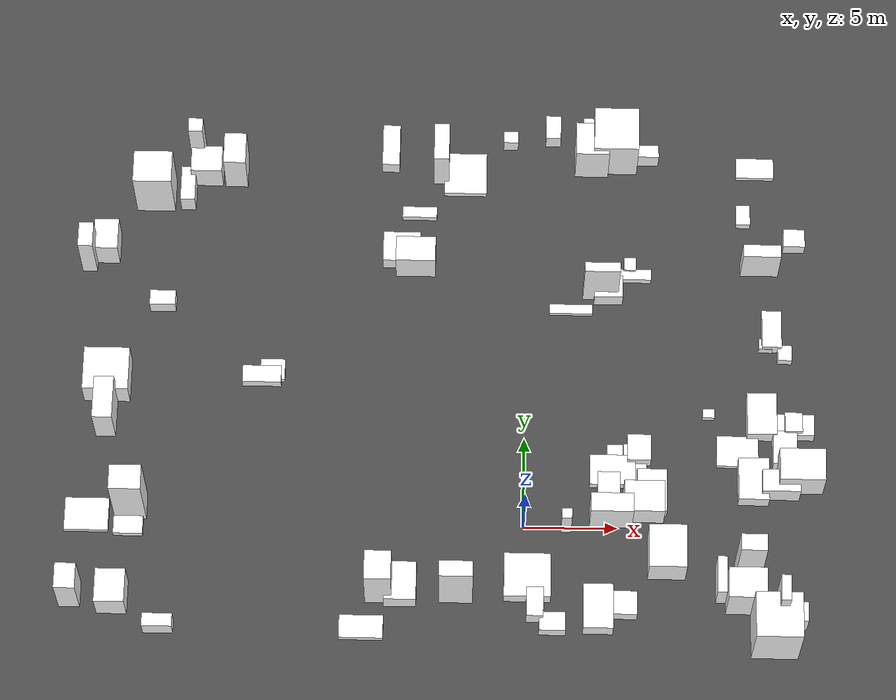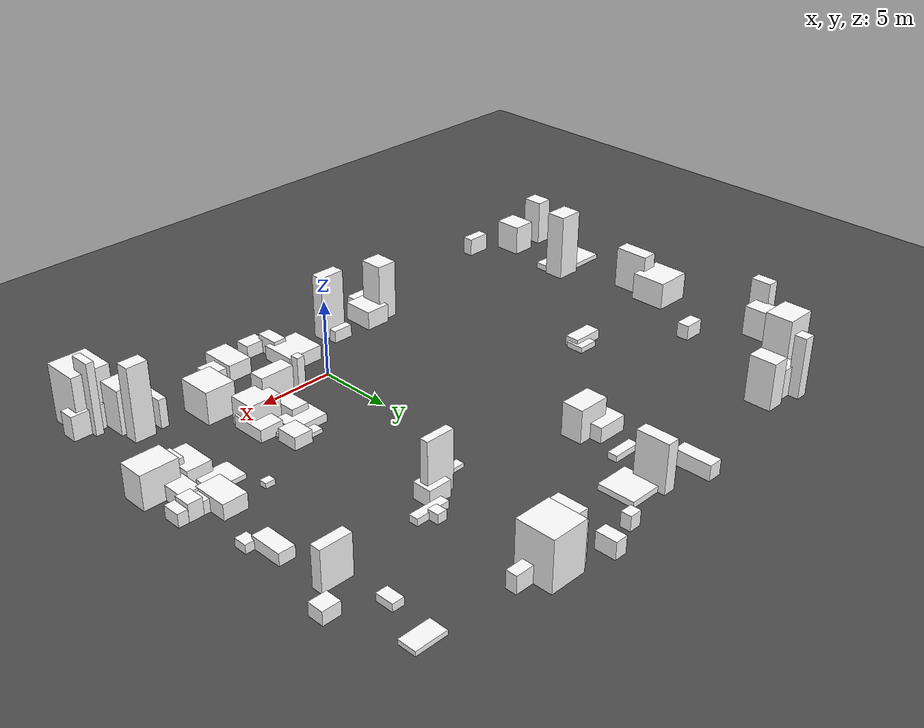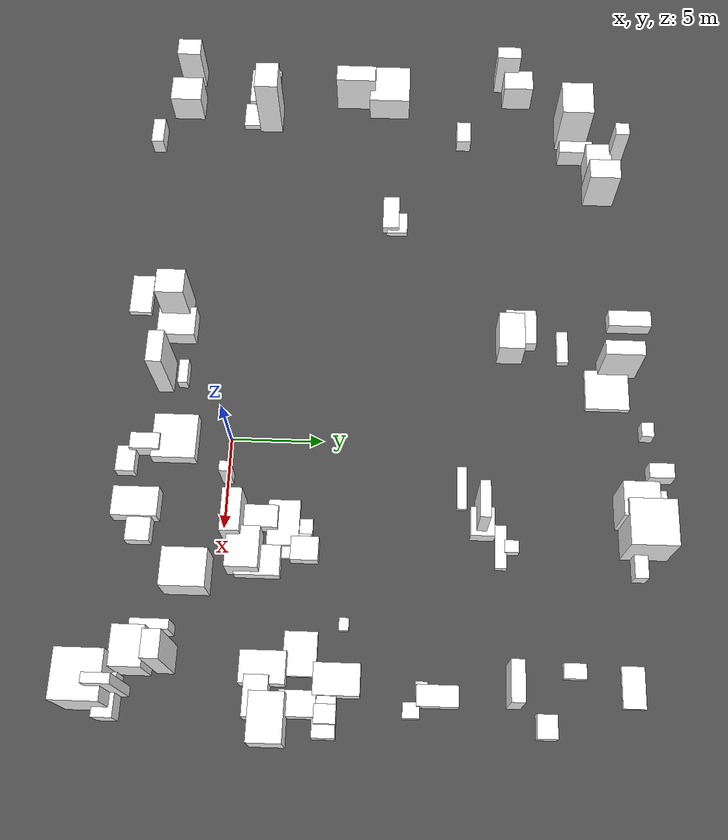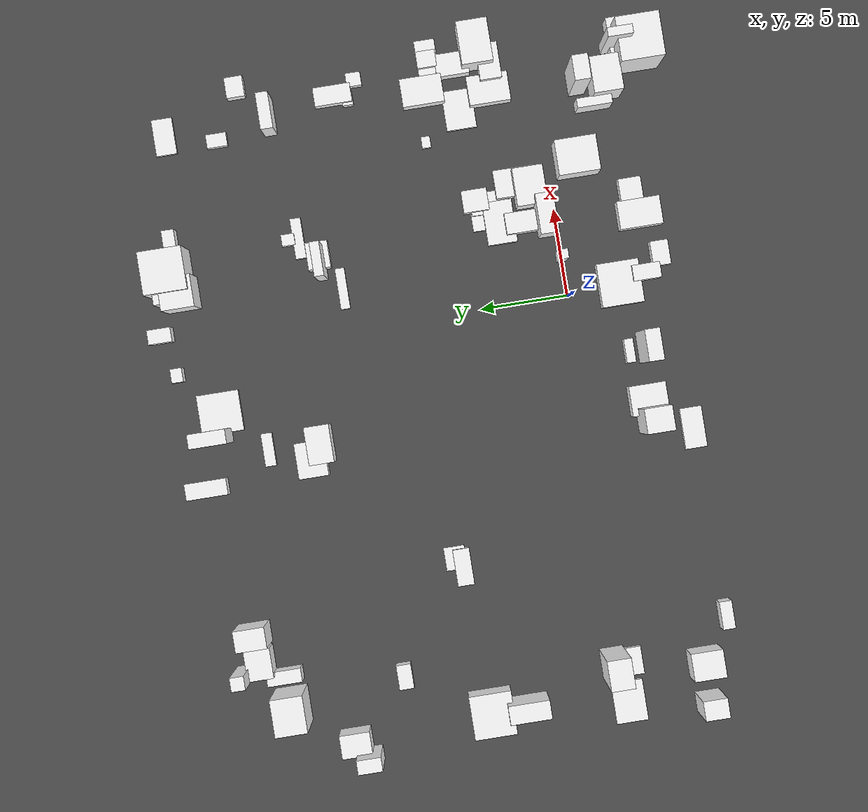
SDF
<sdf version="1.6">
 <world name="mirror_edge_world">
  <model name="ground_plane">
   <static>true</static>
   <link name="link">
    <collision name="collision">
     <geometry><plane><normal>0 0 1</normal><size>100 100</size></plane></geometry>
    </collision>
    <visual name="visual">
     <geometry><plane><normal>0 0 1</normal><size>100 100</size></plane></geometry>
     <material>
      <ambient>0.3 0.3 0.3 1</ambient>
      <diffuse>0.3 0.3 0.3 1</diffuse>
      <specular>0.5 0.5 0.5 1</specular>
      <emissive>0 0 0 1</emissive>
     </material>
    </visual>
   </link>
  </model>
  <model name="block_13_18">
   <static>true</static>
   <link name="link">
    <pose>10.487129065805483 -3.057924497340639 0.9482249293463831 0 0 0</pose>
    <visual name="visual">
     <geometry><box><size>0.5272210038724012 1.9909553987450106 1.8964498586927663</size></box></geometry>
     <material>
      <ambient>1 1 1 1</ambient>
      <diffuse>1 1 1 1</diffuse>
      <specular>0.9 0.9 0.9 1</specular>
      <emissive>0.05 0.05 0.05 1</emissive>
     </material>
    </visual>
   </link>
  </model>
  <model name="block_13_22">
   <static>true</static>
   <link name="link">
    <pose>4.802886377432639 22.130166051637776 1.629273458973543 0 0 0</pose>
    <visual name="visual">
     <geometry><box><size>2.4265361013867563 2.464404111170375 3.258546917947086</size></box></geometry>
     <material>
      <ambient>1 1 1 1</ambient>
      <diffuse>1 1 1 1</diffuse>
      <specular>0.9 0.9 0.9 1</specular>
      <emissive>0.05 0.05 0.05 1</emissive>
     </material>
    </visual>
   </link>
  </model>
  <model name="block_13_25">
   <static>true</static>
   <link name="link">
    <pose>-3.5347261602961524 -3.8883678359652385 2.186226596602356 0 0 0</pose>
    <visual name="visual">
     <geometry><box><size>1.7814680519391284 0.8538851199706008 4.372453193204712</size></box></geometry>
     <material>
      <ambient>1 1 1 1</ambient>
      <diffuse>1 1 1 1</diffuse>
      <specular>0.9 0.9 0.9 1</specular>
      <emissive>0.05 0.05 0.05 1</emissive>
     </material>
    </visual>
   </link>
  </model>
  <model name="block_13_26">
   <static>true</static>
   <link name="link">
    <pose>13.347224263716718 11.418604378397465 0.3897700186176803 0 0 0</pose>
    <collision name="collision">
     <geometry><box><size>1.0596894457926846 2.128671230000208 0.7795400372353606</size></box></geometry>
    </collision>
    <visual name="visual">
     <geometry><box><size>1.0596894457926846 2.128671230000208 0.7795400372353606</size></box></geometry>
     <material>
      <ambient>1 1 1 1</ambient>
      <diffuse>1 1 1 1</diffuse>
      <specular>0.9 0.9 0.9 1</specular>
      <emissive>0.05 0.05 0.05 1</emissive>
     </material>
    </visual>
   </link>
  </model>
  <model name="block_13_27">
   <static>true</static>
   <link name="link">
    <pose>-3.4332618519597276 20.58624436864243 0.19409173965066356 0 0 0</pose>
    <collision name="collision">
     <geometry><box><size>2.316476942068282 2.4197820741229012 0.38818347930132713</size></box></geometry>
    </collision>
    <visual name="visual">
     <geometry><box><size>2.316476942068282 2.4197820741229012 0.38818347930132713</size></box></geometry>
     <material>
      <ambient>1 1 1 1</ambient>
      <diffuse>1 1 1 1</diffuse>
      <specular>0.9 0.9 0.9 1</specular>
      <emissive>0.05 0.05 0.05 1</emissive>
     </material>
    </visual>
   </link>
  </model>
  <model name="block_13_37">
   <static>true</static>
   <link name="link">
    <pose>12.741703810310938 6.377152138402239 0.5125765211415966 0 0 0</pose>
    <collision name="collision">
     <geometry><box><size>1.5964678312690368 2.3696966784389373 1.0251530422831931</size></box></geometry>
    </collision>
    <visual name="visual">
     <geometry><box><size>1.5964678312690368 2.3696966784389373 1.0251530422831931</size></box></geometry>
     <material>
      <ambient>1 1 1 1</ambient>
      <diffuse>1 1 1 1</diffuse>
      <specular>0.9 0.9 0.9 1</specular>
      <emissive>0.05 0.05 0.05 1</emissive>
     </material>
    </visual>
   </link>
  </model>
  <model name="block_13_38">
   <static>true</static>
   <link name="link">
    <pose>-0.9614083044577626 22.597788607933662 0.48104453277165005 0 0 0</pose>
    <collision name="collision">
     <geometry><box><size>0.8028449219992302 0.6664906877554768 0.9620890655433001</size></box></geometry>
    </collision>
    <visual name="visual">
     <geometry><box><size>0.8028449219992302 0.6664906877554768 0.9620890655433001</size></box></geometry>
     <material>
      <ambient>1 1 1 1</ambient>
      <diffuse>1 1 1 1</diffuse>
      <specular>0.9 0.9 0.9 1</specular>
      <emissive>0.05 0.05 0.05 1</emissive>
     </material>
    </visual>
   </link>
  </model>
  <model name="block_13_39">
   <static>true</static>
   <link name="link">
    <pose>4.477514333618405 13.64779409189143 0.5415826231895932 0 0 0</pose>
    <collision name="collision">
     <geometry><box><size>1.5432336134487539 1.270050566878784 1.0831652463791863</size></box></geometry>
    </collision>
    <visual name="visual">
     <geometry><box><size>1.5432336134487539 1.270050566878784 1.0831652463791863</size></box></geometry>
     <material>
      <ambient>1 1 1 1</ambient>
      <diffuse>1 1 1 1</diffuse>
      <specular>0.9 0.9 0.9 1</specular>
      <emissive>0.05 0.05 0.05 1</emissive>
     </material>
    </visual>
   </link>
  </model>
  <model name="block_13_42">
   <static>true</static>
   <link name="link">
    <pose>-6.074371771575954 15.19791912146864 1.0917284993364396 0 0 0</pose>
    <visual name="visual">
     <geometry><box><size>2.1508211346242634 1.4194720122193467 2.183456998672879</size></box></geometry>
     <material>
      <ambient>1 1 1 1</ambient>
      <diffuse>1 1 1 1</diffuse>
      <specular>0.9 0.9 0.9 1</specular>
      <emissive>0.05 0.05 0.05 1</emissive>
     </material>
    </visual>
   </link>
  </model>
  <model name="block_13_44">
   <static>true</static>
   <link name="link">
    <pose>14.639185523052419 16.82144382006406 0.4281751161016098 0 0 0</pose>
    <collision name="collision">
     <geometry><box><size>1.1710046909045824 1.0304812800691767 0.8563502322032196</size></box></geometry>
    </collision>
    <visual name="visual">
     <geometry><box><size>1.1710046909045824 1.0304812800691767 0.8563502322032196</size></box></geometry>
     <material>
      <ambient>1 1 1 1</ambient>
      <diffuse>1 1 1 1</diffuse>
      <specular>0.9 0.9 0.9 1</specular>
      <emissive>0.05 0.05 0.05 1</emissive>
     </material>
    </visual>
   </link>
  </model>
  <model name="block_13_45">
   <static>true</static>
   <link name="link">
    <pose>5.515202533118227 3.61241212877552 0.13018730298122577 0 0 0</pose>
    <collision name="collision">
     <geometry><box><size>2.140902086587973 2.2291208324836917 0.26037460596245154</size></box></geometry>
    </collision>
    <visual name="visual">
     <geometry><box><size>2.140902086587973 2.2291208324836917 0.26037460596245154</size></box></geometry>
     <material>
      <ambient>1 1 1 1</ambient>
      <diffuse>1 1 1 1</diffuse>
      <specular>0.9 0.9 0.9 1</specular>
      <emissive>0.05 0.05 0.05 1</emissive>
     </material>
    </visual>
   </link>
  </model>
  <model name="block_13_46">
   <static>true</static>
   <link name="link">
    <pose>11.748171362711801 -3.8348486149523793 1.4670776445069063 0 0 0</pose>
    <visual name="visual">
     <geometry><box><size>2.0321841206257627 1.6551600098957349 2.9341552890138125</size></box></geometry>
     <material>
      <ambient>1 1 1 1</ambient>
      <diffuse>1 1 1 1</diffuse>
      <specular>0.9 0.9 0.9 1</specular>
      <emissive>0.05 0.05 0.05 1</emissive>
     </material>
    </visual>
   </link>
  </model>
  <model name="block_13_48">
   <static>true</static>
   <link name="link">
    <pose>-19.859103996359863 19.414748919960584 1.8324639464357986 0 0 0</pose>
    <visual name="visual">
     <geometry><box><size>0.8306620607632611 0.7622492284397788 3.664927892871597</size></box></geometry>
     <material>
      <ambient>1 1 1 1</ambient>
      <diffuse>1 1 1 1</diffuse>
      <specular>0.9 0.9 0.9 1</specular>
      <emissive>0.05 0.05 0.05 1</emissive>
     </material>
    </visual>
   </link>
  </model>
  <model name="block_13_50">
   <static>true</static>
   <link name="link">
    <pose>14.448396424150147 5.825688850412873 0.42594148405917454 0 0 0</pose>
    <collision name="collision">
     <geometry><box><size>2.212001617706015 1.1648211164075177 0.8518829681183491</size></box></geometry>
    </collision>
    <visual name="visual">
     <geometry><box><size>2.212001617706015 1.1648211164075177 0.8518829681183491</size></box></geometry>
     <material>
      <ambient>1 1 1 1</ambient>
      <diffuse>1 1 1 1</diffuse>
      <specular>0.9 0.9 0.9 1</specular>
      <emissive>0.05 0.05 0.05 1</emissive>
     </material>
    </visual>
   </link>
  </model>
  <model name="block_13_51">
   <static>true</static>
   <link name="link">
    <pose>9.90750855569933 6.59223469434511 0.17332525953890004 0 0 0</pose>
    <collision name="collision">
     <geometry><box><size>0.6482395583204206 0.5113994349599567 0.3466505190778001</size></box></geometry>
    </collision>
    <visual name="visual">
     <geometry><box><size>0.6482395583204206 0.5113994349599567 0.3466505190778001</size></box></geometry>
     <material>
      <ambient>1 1 1 1</ambient>
      <diffuse>1 1 1 1</diffuse>
      <specular>0.9 0.9 0.9 1</specular>
      <emissive>0.05 0.05 0.05 1</emissive>
     </material>
    </visual>
   </link>
  </model>
  <model name="block_13_52">
   <static>true</static>
   <link name="link">
    <pose>5.642928605898351 15.19931181954523 0.3164790339575603 0 0 0</pose>
    <collision name="collision">
     <geometry><box><size>0.652289572129717 0.7470863645880503 0.6329580679151205</size></box></geometry>
    </collision>
    <visual name="visual">
     <geometry><box><size>0.652289572129717 0.7470863645880503 0.6329580679151205</size></box></geometry>
     <material>
      <ambient>1 1 1 1</ambient>
      <diffuse>1 1 1 1</diffuse>
      <specular>0.9 0.9 0.9 1</specular>
      <emissive>0.05 0.05 0.05 1</emissive>
     </material>
    </visual>
   </link>
  </model>
  <model name="block_13_53">
   <static>true</static>
   <link name="link">
    <pose>-23.94707372075017 15.137665636836907 1.7051332428519175 0 0 0</pose>
    <visual name="visual">
     <geometry><box><size>0.7990171092513736 1.3815118097248413 3.410266485703835</size></box></geometry>
     <material>
      <ambient>1 1 1 1</ambient>
      <diffuse>1 1 1 1</diffuse>
      <specular>0.9 0.9 0.9 1</specular>
      <emissive>0.05 0.05 0.05 1</emissive>
     </material>
    </visual>
   </link>
  </model>
  <model name="block_13_59">
   <static>true</static>
   <link name="link">
    <pose>-20.97364919639511 0.7572670615895642 2.2802976197385956 0 0 0</pose>
    <visual name="visual">
     <geometry><box><size>1.691457847793279 1.3415627131068104 4.560595239477191</size></box></geometry>
     <material>
      <ambient>1 1 1 1</ambient>
      <diffuse>1 1 1 1</diffuse>
      <specular>0.9 0.9 0.9 1</specular>
      <emissive>0.05 0.05 0.05 1</emissive>
     </material>
    </visual>
   </link>
  </model>
  <model name="block_13_60">
   <static>true</static>
   <link name="link">
    <pose>-22.99265740549938 15.814046714301064 1.020261587283405 0 0 0</pose>
    <visual name="visual">
     <geometry><box><size>1.3216520874677777 1.7258064625416691 2.04052317456681</size></box></geometry>
     <material>
      <ambient>1 1 1 1</ambient>
      <diffuse>1 1 1 1</diffuse>
      <specular>0.9 0.9 0.9 1</specular>
      <emissive>0.05 0.05 0.05 1</emissive>
     </material>
    </visual>
   </link>
  </model>
  <model name="block_13_62">
   <static>true</static>
   <link name="link">
    <pose>0.014667282758086486 -2.4076154843114193 0.2721834176171426 0 0 0</pose>
    <collision name="collision">
     <geometry><box><size>0.86463001206432 0.8859106995395463 0.5443668352342852</size></box></geometry>
    </collision>
    <visual name="visual">
     <geometry><box><size>0.86463001206432 0.8859106995395463 0.5443668352342852</size></box></geometry>
     <material>
      <ambient>1 1 1 1</ambient>
      <diffuse>1 1 1 1</diffuse>
      <specular>0.9 0.9 0.9 1</specular>
      <emissive>0.05 0.05 0.05 1</emissive>
     </material>
    </visual>
   </link>
  </model>
  <model name="block_13_66">
   <static>true</static>
   <link name="link">
    <pose>6.127900345869236 1.1778050931836468 0.595203525630843 0 0 0</pose>
    <visual name="visual">
     <geometry><box><size>0.7275735965186017 0.8914207131132419 1.190407051261686</size></box></geometry>
     <material>
      <ambient>1 1 1 1</ambient>
      <diffuse>1 1 1 1</diffuse>
      <specular>0.9 0.9 0.9 1</specular>
      <emissive>0.05 0.05 0.05 1</emissive>
     </material>
    </visual>
   </link>
  </model>
  <model name="block_14_2">
   <static>true</static>
   <link name="link">
    <pose>13.962765803260133 4.480527503155499 0.5011640337249881 0 0 0</pose>
    <collision name="collision">
     <geometry><box><size>1.278043719399678 1.8699116963610358 1.0023280674499762</size></box></geometry>
    </collision>
    <visual name="visual">
     <geometry><box><size>1.278043719399678 1.8699116963610358 1.0023280674499762</size></box></geometry>
     <material>
      <ambient>1 1 1 1</ambient>
      <diffuse>1 1 1 1</diffuse>
      <specular>0.9 0.9 0.9 1</specular>
      <emissive>0.05 0.05 0.05 1</emissive>
     </material>
    </visual>
   </link>
  </model>
  <model name="block_14_3">
   <static>true</static>
   <link name="link">
    <pose>6.835737008848067 1.9705262496137026 0.41566323289990514 0 0 0</pose>
    <collision name="collision">
     <geometry><box><size>1.6015353167421578 2.37555659850039 0.8313264657998103</size></box></geometry>
    </collision>
    <visual name="visual">
     <geometry><box><size>1.6015353167421578 2.37555659850039 0.8313264657998103</size></box></geometry>
     <material>
      <ambient>1 1 1 1</ambient>
      <diffuse>1 1 1 1</diffuse>
      <specular>0.9 0.9 0.9 1</specular>
      <emissive>0.05 0.05 0.05 1</emissive>
     </material>
    </visual>
   </link>
  </model>
  <model name="block_14_4">
   <static>true</static>
   <link name="link">
    <pose>14.057643732520923 10.109156398002153 0.28021665737836315 0 0 0</pose>
    <collision name="collision">
     <geometry><box><size>0.774184454504864 0.858885879928599 0.5604333147567263</size></box></geometry>
    </collision>
    <visual name="visual">
     <geometry><box><size>0.774184454504864 0.858885879928599 0.5604333147567263</size></box></geometry>
     <material>
      <ambient>1 1 1 1</ambient>
      <diffuse>1 1 1 1</diffuse>
      <specular>0.9 0.9 0.9 1</specular>
      <emissive>0.05 0.05 0.05 1</emissive>
     </material>
    </visual>
   </link>
  </model>
  <model name="block_14_12">
   <static>true</static>
   <link name="link">
    <pose>11.456769672830156 4.448508865527255 0.15262072766027945 0 0 0</pose>
    <collision name="collision">
     <geometry><box><size>2.247187102049118 1.7159689928351636 0.3052414553205589</size></box></geometry>
    </collision>
    <visual name="visual">
     <geometry><box><size>2.247187102049118 1.7159689928351636 0.3052414553205589</size></box></geometry>
     <material>
      <ambient>1 1 1 1</ambient>
      <diffuse>1 1 1 1</diffuse>
      <specular>0.9 0.9 0.9 1</specular>
      <emissive>0.05 0.05 0.05 1</emissive>
     </material>
    </visual>
   </link>
  </model>
  <model name="block_14_13">
   <static>true</static>
   <link name="link">
    <pose>-22.558237402896797 5.925179399697304 1.4251321566281157 0 0 0</pose>
    <visual name="visual">
     <geometry><box><size>1.0646524672377267 2.344278083755642 2.8502643132562313</size></box></geometry>
     <material>
      <ambient>1 1 1 1</ambient>
      <diffuse>1 1 1 1</diffuse>
      <specular>0.9 0.9 0.9 1</specular>
      <emissive>0.05 0.05 0.05 1</emissive>
     </material>
    </visual>
   </link>
  </model>
  <model name="block_14_14">
   <static>true</static>
   <link name="link">
    <pose>4.046683612412554 13.581538816527043 1.9049634741556685 0 0 0</pose>
    <visual name="visual">
     <geometry><box><size>1.9162616528552945 0.5409567863028868 3.809926948311337</size></box></geometry>
     <material>
      <ambient>1 1 1 1</ambient>
      <diffuse>1 1 1 1</diffuse>
      <specular>0.9 0.9 0.9 1</specular>
      <emissive>0.05 0.05 0.05 1</emissive>
     </material>
    </visual>
   </link>
  </model>
  <model name="block_14_15">
   <static>true</static>
   <link name="link">
    <pose>1.3885294801698507 23.189698170276436 0.5573639202047234 0 0 0</pose>
    <collision name="collision">
     <geometry><box><size>0.8235660976095254 1.350610979631631 1.1147278404094467</size></box></geometry>
    </collision>
    <visual name="visual">
     <geometry><box><size>0.8235660976095254 1.350610979631631 1.1147278404094467</size></box></geometry>
     <material>
      <ambient>1 1 1 1</ambient>
      <diffuse>1 1 1 1</diffuse>
      <specular>0.9 0.9 0.9 1</specular>
      <emissive>0.05 0.05 0.05 1</emissive>
     </material>
    </visual>
   </link>
  </model>
  <model name="block_14_18">
   <static>true</static>
   <link name="link">
    <pose>4.7388472906389545 3.179769156637568 0.27114532767709126 0 0 0</pose>
    <collision name="collision">
     <geometry><box><size>2.4482341095503792 1.688832008954729 0.5422906553541825</size></box></geometry>
    </collision>
    <visual name="visual">
     <geometry><box><size>2.4482341095503792 1.688832008954729 0.5422906553541825</size></box></geometry>
     <material>
      <ambient>1 1 1 1</ambient>
      <diffuse>1 1 1 1</diffuse>
      <specular>0.9 0.9 0.9 1</specular>
      <emissive>0.05 0.05 0.05 1</emissive>
     </material>
    </visual>
   </link>
  </model>
  <model name="block_14_23">
   <static>true</static>
   <link name="link">
    <pose>-18.708186702249378 19.2509986830788 0.6910282966061743 0 0 0</pose>
    <visual name="visual">
     <geometry><box><size>0.7879605644981105 1.9778118177785016 1.3820565932123485</size></box></geometry>
     <material>
      <ambient>1 1 1 1</ambient>
      <diffuse>1 1 1 1</diffuse>
      <specular>0.9 0.9 0.9 1</specular>
      <emissive>0.05 0.05 0.05 1</emissive>
     </material>
    </visual>
   </link>
  </model>
  <model name="block_14_24">
   <static>true</static>
   <link name="link">
    <pose>4.655034841223426 0.601715833159453 1.2853488181766326 0 0 0</pose>
    <visual name="visual">
     <geometry><box><size>2.2720798695161433 1.0348011650785147 2.570697636353265</size></box></geometry>
     <material>
      <ambient>1 1 1 1</ambient>
      <diffuse>1 1 1 1</diffuse>
      <specular>0.9 0.9 0.9 1</specular>
      <emissive>0.05 0.05 0.05 1</emissive>
     </material>
    </visual>
   </link>
  </model>
  <model name="block_14_27">
   <static>true</static>
   <link name="link">
    <pose>14.425492997645435 5.871201195087461 0.5745066592288264 0 0 0</pose>
    <visual name="visual">
     <geometry><box><size>0.9450124014511778 1.0952902022613602 1.1490133184576528</size></box></geometry>
     <material>
      <ambient>1 1 1 1</ambient>
      <diffuse>1 1 1 1</diffuse>
      <specular>0.9 0.9 0.9 1</specular>
      <emissive>0.05 0.05 0.05 1</emissive>
     </material>
    </visual>
   </link>
  </model>
  <model name="block_14_28">
   <static>true</static>
   <link name="link">
    <pose>4.9824974084510245 -4.40749493742767 0.4400801458451514 0 0 0</pose>
    <collision name="collision">
     <geometry><box><size>2.1208135725552975 1.2912079906074068 0.8801602916903029</size></box></geometry>
    </collision>
    <visual name="visual">
     <geometry><box><size>2.1208135725552975 1.2912079906074068 0.8801602916903029</size></box></geometry>
     <material>
      <ambient>1 1 1 1</ambient>
      <diffuse>1 1 1 1</diffuse>
      <specular>0.9 0.9 0.9 1</specular>
      <emissive>0.05 0.05 0.05 1</emissive>
     </material>
    </visual>
   </link>
  </model>
  <model name="block_14_29">
   <static>true</static>
   <link name="link">
    <pose>6.15062906594212 4.383214997125978 0.4259400160450953 0 0 0</pose>
    <collision name="collision">
     <geometry><box><size>1.2560725696235988 1.4561859521331586 0.8518800320901906</size></box></geometry>
    </collision>
    <visual name="visual">
     <geometry><box><size>1.2560725696235988 1.4561859521331586 0.8518800320901906</size></box></geometry>
     <material>
      <ambient>1 1 1 1</ambient>
      <diffuse>1 1 1 1</diffuse>
      <specular>0.9 0.9 0.9 1</specular>
      <emissive>0.05 0.05 0.05 1</emissive>
     </material>
    </visual>
   </link>
  </model>
  <model name="block_14_32">
   <static>true</static>
   <link name="link">
    <pose>-7.633431188518699 -3.5981442787654454 1.9512626466033791 0 0 0</pose>
    <visual name="visual">
     <geometry><box><size>1.4131538461068252 1.5719666817943743 3.9025252932067582</size></box></geometry>
     <material>
      <ambient>1 1 1 1</ambient>
      <diffuse>1 1 1 1</diffuse>
      <specular>0.9 0.9 0.9 1</specular>
      <emissive>0.05 0.05 0.05 1</emissive>
     </material>
    </visual>
   </link>
  </model>
  <model name="block_14_43">
   <static>true</static>
   <link name="link">
    <pose>3.9823130349681755 -4.684667365462058 0.5578641141974439 0 0 0</pose>
    <collision name="collision">
     <geometry><box><size>1.5912174923130815 2.452352666094687 1.1157282283948877</size></box></geometry>
    </collision>
    <visual name="visual">
     <geometry><box><size>1.5912174923130815 2.452352666094687 1.1157282283948877</size></box></geometry>
     <material>
      <ambient>1 1 1 1</ambient>
      <diffuse>1 1 1 1</diffuse>
      <specular>0.9 0.9 0.9 1</specular>
      <emissive>0.05 0.05 0.05 1</emissive>
     </material>
    </visual>
   </link>
  </model>
  <model name="block_14_44">
   <static>true</static>
   <link name="link">
    <pose>4.259439779740866 22.843919787190366 0.4700722579133421 0 0 0</pose>
    <collision name="collision">
     <geometry><box><size>1.7037723523643238 0.6011671611772664 0.9401445158266842</size></box></geometry>
    </collision>
    <visual name="visual">
     <geometry><box><size>1.7037723523643238 0.6011671611772664 0.9401445158266842</size></box></geometry>
     <material>
      <ambient>1 1 1 1</ambient>
      <diffuse>1 1 1 1</diffuse>
      <specular>0.9 0.9 0.9 1</specular>
      <emissive>0.05 0.05 0.05 1</emissive>
     </material>
    </visual>
   </link>
  </model>
  <model name="block_14_47">
   <static>true</static>
   <link name="link">
    <pose>7.619227709919162 -1.6125021096303813 1.0793620992557769 0 0 0</pose>
    <visual name="visual">
     <geometry><box><size>2.0005374280214703 2.3594313791643895 2.1587241985115537</size></box></geometry>
     <material>
      <ambient>1 1 1 1</ambient>
      <diffuse>1 1 1 1</diffuse>
      <specular>0.9 0.9 0.9 1</specular>
      <emissive>0.05 0.05 0.05 1</emissive>
     </material>
    </visual>
   </link>
  </model>
  <model name="block_14_50">
   <static>true</static>
   <link name="link">
    <pose>-17.711823269681528 20.490917971166656 0.9723474042854967 0 0 0</pose>
    <visual name="visual">
     <geometry><box><size>1.7016482815590195 1.4913472131761123 1.9446948085709934</size></box></geometry>
     <material>
      <ambient>1 1 1 1</ambient>
      <diffuse>1 1 1 1</diffuse>
      <specular>0.9 0.9 0.9 1</specular>
      <emissive>0.05 0.05 0.05 1</emissive>
     </material>
    </visual>
   </link>
  </model>
  <model name="block_14_53">
   <static>true</static>
   <link name="link">
    <pose>5.569434388744838 4.0145883188974105 0.25448279921925726 0 0 0</pose>
    <collision name="collision">
     <geometry><box><size>0.5212830363456278 1.321619653917908 0.5089655984385145</size></box></geometry>
    </collision>
    <visual name="visual">
     <geometry><box><size>0.5212830363456278 1.321619653917908 0.5089655984385145</size></box></geometry>
     <material>
      <ambient>1 1 1 1</ambient>
      <diffuse>1 1 1 1</diffuse>
      <specular>0.9 0.9 0.9 1</specular>
      <emissive>0.05 0.05 0.05 1</emissive>
     </material>
    </visual>
   </link>
  </model>
  <model name="block_14_57">
   <static>true</static>
   <link name="link">
    <pose>14.78450234880188 3.0738865404191644 1.1192878445076835 0 0 0</pose>
    <visual name="visual">
     <geometry><box><size>2.431865125908066 1.7582050521052515 2.238575689015367</size></box></geometry>
     <material>
      <ambient>1 1 1 1</ambient>
      <diffuse>1 1 1 1</diffuse>
      <specular>0.9 0.9 0.9 1</specular>
      <emissive>0.05 0.05 0.05 1</emissive>
     </material>
    </visual>
   </link>
  </model>
  <model name="block_14_60">
   <static>true</static>
   <link name="link">
    <pose>13.928928118562993 -4.933224470752004 0.8008324255146693 0 0 0</pose>
    <visual name="visual">
     <geometry><box><size>2.1573496906297907 1.0534218627146705 1.6016648510293385</size></box></geometry>
     <material>
      <ambient>1 1 1 1</ambient>
      <diffuse>1 1 1 1</diffuse>
      <specular>0.9 0.9 0.9 1</specular>
      <emissive>0.05 0.05 0.05 1</emissive>
     </material>
    </visual>
   </link>
  </model>
  <model name="block_14_61">
   <static>true</static>
   <link name="link">
    <pose>-14.253890660230118 8.30418332140965 0.32450960696209213 0 0 0</pose>
    <collision name="collision">
     <geometry><box><size>2.0934778918674435 0.9500949108337366 0.6490192139241843</size></box></geometry>
    </collision>
    <visual name="visual">
     <geometry><box><size>2.0934778918674435 0.9500949108337366 0.6490192139241843</size></box></geometry>
     <material>
      <ambient>1 1 1 1</ambient>
      <diffuse>1 1 1 1</diffuse>
      <specular>0.9 0.9 0.9 1</specular>
      <emissive>0.05 0.05 0.05 1</emissive>
     </material>
    </visual>
   </link>
  </model>
  <model name="block_14_64">
   <static>true</static>
   <link name="link">
    <pose>4.535654942340063 2.0057689489339703 0.48783612842736895 0 0 0</pose>
    <collision name="collision">
     <geometry><box><size>1.1996149518356591 1.7855548288090917 0.9756722568547379</size></box></geometry>
    </collision>
    <visual name="visual">
     <geometry><box><size>1.1996149518356591 1.7855548288090917 0.9756722568547379</size></box></geometry>
     <material>
      <ambient>1 1 1 1</ambient>
      <diffuse>1 1 1 1</diffuse>
      <specular>0.9 0.9 0.9 1</specular>
      <emissive>0.05 0.05 0.05 1</emissive>
     </material>
    </visual>
   </link>
  </model>
  <model name="block_14_66">
   <static>true</static>
   <link name="link">
    <pose>-22.58855298627694 7.982133874879897 0.9244057505931305 0 0 0</pose>
    <visual name="visual">
     <geometry><box><size>2.4671406652876966 2.40275201761881 1.848811501186261</size></box></geometry>
     <material>
      <ambient>1 1 1 1</ambient>
      <diffuse>1 1 1 1</diffuse>
      <specular>0.9 0.9 0.9 1</specular>
      <emissive>0.05 0.05 0.05 1</emissive>
     </material>
    </visual>
   </link>
  </model>
  <model name="block_15_1">
   <static>true</static>
   <link name="link">
    <pose>12.74005530941534 15.226012155631707 1.3194618870641306 0 0 0</pose>
    <visual name="visual">
     <geometry><box><size>2.055380080276606 0.705581174850592 2.638923774128261</size></box></geometry>
     <material>
      <ambient>1 1 1 1</ambient>
      <diffuse>1 1 1 1</diffuse>
      <specular>0.9 0.9 0.9 1</specular>
      <emissive>0.05 0.05 0.05 1</emissive>
     </material>
    </visual>
   </link>
  </model>
  <model name="block_15_2">
   <static>true</static>
   <link name="link">
    <pose>-23.966752725037157 -4.257583043115331 1.5681745225085821 0 0 0</pose>
    <visual name="visual">
     <geometry><box><size>1.1129878667691848 1.3799508062986205 3.1363490450171643</size></box></geometry>
     <material>
      <ambient>1 1 1 1</ambient>
      <diffuse>1 1 1 1</diffuse>
      <specular>0.9 0.9 0.9 1</specular>
      <emissive>0.05 0.05 0.05 1</emissive>
     </material>
    </visual>
   </link>
  </model>
  <model name="block_15_3">
   <static>true</static>
   <link name="link">
    <pose>-5.931430066466689 18.18570018208424 0.20919674200886623 0 0 0</pose>
    <collision name="collision">
     <geometry><box><size>1.8919534066244312 0.633813811904574 0.41839348401773246</size></box></geometry>
    </collision>
    <visual name="visual">
     <geometry><box><size>1.8919534066244312 0.633813811904574 0.41839348401773246</size></box></geometry>
     <material>
      <ambient>1 1 1 1</ambient>
      <diffuse>1 1 1 1</diffuse>
      <specular>0.9 0.9 0.9 1</specular>
      <emissive>0.05 0.05 0.05 1</emissive>
     </material>
    </visual>
   </link>
  </model>
  <model name="block_15_5">
   <static>true</static>
   <link name="link">
    <pose>13.71449981694662 2.425952131207155 0.7177441252532413 0 0 0</pose>
    <visual name="visual">
     <geometry><box><size>2.030956897987899 1.2348278388322045 1.4354882505064825</size></box></geometry>
     <material>
      <ambient>1 1 1 1</ambient>
      <diffuse>1 1 1 1</diffuse>
      <specular>0.9 0.9 0.9 1</specular>
      <emissive>0.05 0.05 0.05 1</emissive>
     </material>
    </visual>
   </link>
  </model>
  <model name="block_15_6">
   <static>true</static>
   <link name="link">
    <pose>-18.24234755468718 21.50828466549529 2.023048903773639 0 0 0</pose>
    <visual name="visual">
     <geometry><box><size>0.7807602891122347 0.7892993115836309 4.046097807547278</size></box></geometry>
     <material>
      <ambient>1 1 1 1</ambient>
      <diffuse>1 1 1 1</diffuse>
      <specular>0.9 0.9 0.9 1</specular>
      <emissive>0.05 0.05 0.05 1</emissive>
     </material>
    </visual>
   </link>
  </model>
  <model name="block_15_8">
   <static>true</static>
   <link name="link">
    <pose>-19.211488288490113 -5.9496181915060555 0.6045241536626644 0 0 0</pose>
    <visual name="visual">
     <geometry><box><size>1.5905483046414708 0.7087653566802654 1.2090483073253289</size></box></geometry>
     <material>
      <ambient>1 1 1 1</ambient>
      <diffuse>1 1 1 1</diffuse>
      <specular>0.9 0.9 0.9 1</specular>
      <emissive>0.05 0.05 0.05 1</emissive>
     </material>
    </visual>
   </link>
  </model>
  <model name="block_15_14">
   <static>true</static>
   <link name="link">
    <pose>-21.065774730884847 -0.030076357318964853 0.20623360241374022 0 0 0</pose>
    <collision name="collision">
     <geometry><box><size>1.572756612259531 1.7502347981720798 0.41246720482748045</size></box></geometry>
    </collision>
    <visual name="visual">
     <geometry><box><size>1.572756612259531 1.7502347981720798 0.41246720482748045</size></box></geometry>
     <material>
      <ambient>1 1 1 1</ambient>
      <diffuse>1 1 1 1</diffuse>
      <specular>0.9 0.9 0.9 1</specular>
      <emissive>0.05 0.05 0.05 1</emissive>
     </material>
    </visual>
   </link>
  </model>
  <model name="block_15_15">
   <static>true</static>
   <link name="link">
    <pose>-4.770426892991786 21.173707886108996 1.6099773530028059 0 0 0</pose>
    <visual name="visual">
     <geometry><box><size>0.826637655144759 2.1346264852258043 3.2199547060056117</size></box></geometry>
     <material>
      <ambient>1 1 1 1</ambient>
      <diffuse>1 1 1 1</diffuse>
      <specular>0.9 0.9 0.9 1</specular>
      <emissive>0.05 0.05 0.05 1</emissive>
     </material>
    </visual>
   </link>
  </model>
  <model name="block_15_20">
   <static>true</static>
   <link name="link">
    <pose>6.395366868379504 1.254590349480285 0.9242830998306879 0 0 0</pose>
    <visual name="visual">
     <geometry><box><size>2.158742301437347 1.7329006371123081 1.8485661996613758</size></box></geometry>
     <material>
      <ambient>1 1 1 1</ambient>
      <diffuse>1 1 1 1</diffuse>
      <specular>0.9 0.9 0.9 1</specular>
      <emissive>0.05 0.05 0.05 1</emissive>
     </material>
    </visual>
   </link>
  </model>
  <model name="block_15_21">
   <static>true</static>
   <link name="link">
    <pose>11.937006986876412 -2.288493913013477 2.4224131824104287 0 0 0</pose>
    <visual name="visual">
     <geometry><box><size>1.3805025059083231 0.8999835042274476 4.844826364820857</size></box></geometry>
     <material>
      <ambient>1 1 1 1</ambient>
      <diffuse>1 1 1 1</diffuse>
      <specular>0.9 0.9 0.9 1</specular>
      <emissive>0.05 0.05 0.05 1</emissive>
     </material>
    </visual>
   </link>
  </model>
  <model name="block_15_22">
   <static>true</static>
   <link name="link">
    <pose>6.43291282789011 21.806992391070708 0.5650923724907958 0 0 0</pose>
    <collision name="collision">
     <geometry><box><size>1.5660535771242878 0.7152576463821978 1.1301847449815916</size></box></geometry>
    </collision>
    <visual name="visual">
     <geometry><box><size>1.5660535771242878 0.7152576463821978 1.1301847449815916</size></box></geometry>
     <material>
      <ambient>1 1 1 1</ambient>
      <diffuse>1 1 1 1</diffuse>
      <specular>0.9 0.9 0.9 1</specular>
      <emissive>0.05 0.05 0.05 1</emissive>
     </material>
    </visual>
   </link>
  </model>
  <model name="block_15_23">
   <static>true</static>
   <link name="link">
    <pose>12.563983749676034 21.257171141659114 0.15186701805176012 0 0 0</pose>
    <collision name="collision">
     <geometry><box><size>2.079134179173143 1.1840013011110797 0.30373403610352023</size></box></geometry>
    </collision>
    <visual name="visual">
     <geometry><box><size>2.079134179173143 1.1840013011110797 0.30373403610352023</size></box></geometry>
     <material>
      <ambient>1 1 1 1</ambient>
      <diffuse>1 1 1 1</diffuse>
      <specular>0.9 0.9 0.9 1</specular>
      <emissive>0.05 0.05 0.05 1</emissive>
     </material>
    </visual>
   </link>
  </model>
  <model name="block_15_24">
   <static>true</static>
   <link name="link">
    <pose>-16.100747484388766 20.59563646648454 1.5645090112991107 0 0 0</pose>
    <visual name="visual">
     <geometry><box><size>1.2099035200942319 1.7686952892500643 3.1290180225982214</size></box></geometry>
     <material>
      <ambient>1 1 1 1</ambient>
      <diffuse>1 1 1 1</diffuse>
      <specular>0.9 0.9 0.9 1</specular>
      <emissive>0.05 0.05 0.05 1</emissive>
     </material>
    </visual>
   </link>
  </model>
  <model name="block_15_25">
   <static>true</static>
   <link name="link">
    <pose>-7.581432820813085 21.96731074234101 0.5047217735965406 0 0 0</pose>
    <visual name="visual">
     <geometry><box><size>0.9513170561670903 2.3949921894617034 1.0094435471930812</size></box></geometry>
     <material>
      <ambient>1 1 1 1</ambient>
      <diffuse>1 1 1 1</diffuse>
      <specular>0.9 0.9 0.9 1</specular>
      <emissive>0.05 0.05 0.05 1</emissive>
     </material>
    </visual>
   </link>
  </model>
  <model name="block_15_29">
   <static>true</static>
   <link name="link">
    <pose>-23.316944530047156 0.18832515817328144 0.15867516253714042 0 0 0</pose>
    <collision name="collision">
     <geometry><box><size>2.356412384391716 1.814740391793624 0.31735032507428085</size></box></geometry>
    </collision>
    <visual name="visual">
     <geometry><box><size>2.356412384391716 1.814740391793624 0.31735032507428085</size></box></geometry>
     <material>
      <ambient>1 1 1 1</ambient>
      <diffuse>1 1 1 1</diffuse>
      <specular>0.9 0.9 0.9 1</specular>
      <emissive>0.05 0.05 0.05 1</emissive>
     </material>
    </visual>
   </link>
  </model>
  <model name="block_15_31">
   <static>true</static>
   <link name="link">
    <pose>-8.504705492223593 -5.8477493167453956 0.19950263509787763 0 0 0</pose>
    <collision name="collision">
     <geometry><box><size>2.33840514045405 1.252843278455696 0.39900527019575527</size></box></geometry>
    </collision>
    <visual name="visual">
     <geometry><box><size>2.33840514045405 1.252843278455696 0.39900527019575527</size></box></geometry>
     <material>
      <ambient>1 1 1 1</ambient>
      <diffuse>1 1 1 1</diffuse>
      <specular>0.9 0.9 0.9 1</specular>
      <emissive>0.05 0.05 0.05 1</emissive>
     </material>
    </visual>
   </link>
  </model>
  <model name="block_15_33">
   <static>true</static>
   <link name="link">
    <pose>-20.48864031829102 19.058991053976566 1.9241353480372656 0 0 0</pose>
    <visual name="visual">
     <geometry><box><size>2.0951086712383153 1.8225491228449182 3.848270696074531</size></box></geometry>
     <material>
      <ambient>1 1 1 1</ambient>
      <diffuse>1 1 1 1</diffuse>
      <specular>0.9 0.9 0.9 1</specular>
      <emissive>0.05 0.05 0.05 1</emissive>
     </material>
    </visual>
   </link>
  </model>
  <model name="block_15_35">
   <static>true</static>
   <link name="link">
    <pose>5.650214231985501 14.634172771200266 0.2304824816214479 0 0 0</pose>
    <collision name="collision">
     <geometry><box><size>2.3124876730514563 0.606640562881519 0.4609649632428958</size></box></geometry>
    </collision>
    <visual name="visual">
     <geometry><box><size>2.3124876730514563 0.606640562881519 0.4609649632428958</size></box></geometry>
     <material>
      <ambient>1 1 1 1</ambient>
      <diffuse>1 1 1 1</diffuse>
      <specular>0.9 0.9 0.9 1</specular>
      <emissive>0.05 0.05 0.05 1</emissive>
     </material>
    </visual>
   </link>
  </model>
  <model name="block_15_38">
   <static>true</static>
   <link name="link">
    <pose>-3.621209130046985 -2.927180334851516 0.41210839036783725 0 0 0</pose>
    <collision name="collision">
     <geometry><box><size>1.3668201751744316 0.52647496714994 0.8242167807356745</size></box></geometry>
    </collision>
    <visual name="visual">
     <geometry><box><size>1.3668201751744316 0.52647496714994 0.8242167807356745</size></box></geometry>
     <material>
      <ambient>1 1 1 1</ambient>
      <diffuse>1 1 1 1</diffuse>
      <specular>0.9 0.9 0.9 1</specular>
      <emissive>0.05 0.05 0.05 1</emissive>
     </material>
    </visual>
   </link>
  </model>
  <model name="block_15_39">
   <static>true</static>
   <link name="link">
    <pose>3.5199460948553494 21.642849944924986 1.479869267466787 0 0 0</pose>
    <visual name="visual">
     <geometry><box><size>1.8211187956511627 1.883554984725443 2.959738534933574</size></box></geometry>
     <material>
      <ambient>1 1 1 1</ambient>
      <diffuse>1 1 1 1</diffuse>
      <specular>0.9 0.9 0.9 1</specular>
      <emissive>0.05 0.05 0.05 1</emissive>
     </material>
    </visual>
   </link>
  </model>
  <model name="block_15_41">
   <static>true</static>
   <link name="link">
    <pose>-6.4903256300015535 -3.5278325855038646 0.6228553280105615 0 0 0</pose>
    <collision name="collision">
     <geometry><box><size>1.7151282949004947 2.107067770655868 1.245710656021123</size></box></geometry>
    </collision>
    <visual name="visual">
     <geometry><box><size>1.7151282949004947 2.107067770655868 1.245710656021123</size></box></geometry>
     <material>
      <ambient>1 1 1 1</ambient>
      <diffuse>1 1 1 1</diffuse>
      <specular>0.9 0.9 0.9 1</specular>
      <emissive>0.05 0.05 0.05 1</emissive>
     </material>
    </visual>
   </link>
  </model>
  <model name="block_15_46">
   <static>true</static>
   <link name="link">
    <pose>2.274778929159112 0.03837270187679742 1.135131094820627 0 0 0</pose>
    <visual name="visual">
     <geometry><box><size>0.5419032994034749 0.5603581215676212 2.270262189641254</size></box></geometry>
     <material>
      <ambient>1 1 1 1</ambient>
      <diffuse>1 1 1 1</diffuse>
      <specular>0.9 0.9 0.9 1</specular>
      <emissive>0.05 0.05 0.05 1</emissive>
     </material>
    </visual>
   </link>
  </model>
  <model name="block_15_49">
   <static>true</static>
   <link name="link">
    <pose>13.02133313023355 10.625985041946123 0.2749897121611304 0 0 0</pose>
    <collision name="collision">
     <geometry><box><size>0.7336343090422921 0.6134504799426757 0.5499794243222608</size></box></geometry>
    </collision>
    <visual name="visual">
     <geometry><box><size>0.7336343090422921 0.6134504799426757 0.5499794243222608</size></box></geometry>
     <material>
      <ambient>1 1 1 1</ambient>
      <diffuse>1 1 1 1</diffuse>
      <specular>0.9 0.9 0.9 1</specular>
      <emissive>0.05 0.05 0.05 1</emissive>
     </material>
    </visual>
   </link>
  </model>
  <model name="block_15_51">
   <static>true</static>
   <link name="link">
    <pose>-6.853518890727393 15.835313076758087 0.5100735764993892 0 0 0</pose>
    <collision name="collision">
     <geometry><box><size>2.046704899631158 1.7070321167041778 1.0201471529987785</size></box></geometry>
    </collision>
    <visual name="visual">
     <geometry><box><size>2.046704899631158 1.7070321167041778 1.0201471529987785</size></box></geometry>
     <material>
      <ambient>1 1 1 1</ambient>
      <diffuse>1 1 1 1</diffuse>
      <specular>0.9 0.9 0.9 1</specular>
      <emissive>0.05 0.05 0.05 1</emissive>
     </material>
    </visual>
   </link>
  </model>
  <model name="block_15_52">
   <static>true</static>
   <link name="link">
    <pose>1.5748822939465192 -5.499875063971868 0.43691807102037267 0 0 0</pose>
    <collision name="collision">
     <geometry><box><size>1.404769166779562 1.0235907428095599 0.8738361420407453</size></box></geometry>
    </collision>
    <visual name="visual">
     <geometry><box><size>1.404769166779562 1.0235907428095599 0.8738361420407453</size></box></geometry>
     <material>
      <ambient>1 1 1 1</ambient>
      <diffuse>1 1 1 1</diffuse>
      <specular>0.9 0.9 0.9 1</specular>
      <emissive>0.05 0.05 0.05 1</emissive>
     </material>
    </visual>
   </link>
  </model>
  <model name="block_15_55">
   <static>true</static>
   <link name="link">
    <pose>0.6423534686341519 -4.529437728452282 0.6001493167798353 0 0 0</pose>
    <collision name="collision">
     <geometry><box><size>0.894982987291389 1.5959915113243268 1.2002986335596706</size></box></geometry>
    </collision>
    <visual name="visual">
     <geometry><box><size>0.894982987291389 1.5959915113243268 1.2002986335596706</size></box></geometry>
     <material>
      <ambient>1 1 1 1</ambient>
      <diffuse>1 1 1 1</diffuse>
      <specular>0.9 0.9 0.9 1</specular>
      <emissive>0.05 0.05 0.05 1</emissive>
     </material>
    </visual>
   </link>
  </model>
  <model name="block_15_58">
   <static>true</static>
   <link name="link">
    <pose>-13.690669494683407 8.680474445580789 0.18868589139035535 0 0 0</pose>
    <collision name="collision">
     <geometry><box><size>1.334853495397509 1.183886852077223 0.3773717827807107</size></box></geometry>
    </collision>
    <visual name="visual">
     <geometry><box><size>1.334853495397509 1.183886852077223 0.3773717827807107</size></box></geometry>
     <material>
      <ambient>1 1 1 1</ambient>
      <diffuse>1 1 1 1</diffuse>
      <specular>0.9 0.9 0.9 1</specular>
      <emissive>0.05 0.05 0.05 1</emissive>
     </material>
    </visual>
   </link>
  </model>
  <model name="block_15_59">
   <static>true</static>
   <link name="link">
    <pose>12.266565835650368 2.6468375676482614 0.5121306845657306 0 0 0</pose>
    <collision name="collision">
     <geometry><box><size>1.6388996615878708 2.3485540028646996 1.0242613691314613</size></box></geometry>
    </collision>
    <visual name="visual">
     <geometry><box><size>1.6388996615878708 2.3485540028646996 1.0242613691314613</size></box></geometry>
     <material>
      <ambient>1 1 1 1</ambient>
      <diffuse>1 1 1 1</diffuse>
      <specular>0.9 0.9 0.9 1</specular>
      <emissive>0.05 0.05 0.05 1</emissive>
     </material>
    </visual>
   </link>
  </model>
  <model name="block_15_64">
   <static>true</static>
   <link name="link">
    <pose>2.4464223103627276 12.59504322194612 0.1370093008228111 0 0 0</pose>
    <collision name="collision">
     <geometry><box><size>2.34812847878107 0.5411202570961229 0.2740186016456222</size></box></geometry>
    </collision>
    <visual name="visual">
     <geometry><box><size>2.34812847878107 0.5411202570961229 0.2740186016456222</size></box></geometry>
     <material>
      <ambient>1 1 1 1</ambient>
      <diffuse>1 1 1 1</diffuse>
      <specular>0.9 0.9 0.9 1</specular>
      <emissive>0.05 0.05 0.05 1</emissive>
     </material>
    </visual>
   </link>
  </model>
  <model name="block_15_66">
   <static>true</static>
   <link name="link">
    <pose>0.23245354853579414 -2.985144546691887 0.48178541232019423 0 0 0</pose>
    <collision name="collision">
     <geometry><box><size>2.4781279698074874 2.3994955483506946 0.9635708246403885</size></box></geometry>
    </collision>
    <visual name="visual">
     <geometry><box><size>2.4781279698074874 2.3994955483506946 0.9635708246403885</size></box></geometry>
     <material>
      <ambient>1 1 1 1</ambient>
      <diffuse>1 1 1 1</diffuse>
      <specular>0.9 0.9 0.9 1</specular>
      <emissive>0.05 0.05 0.05 1</emissive>
     </material>
    </visual>
   </link>
  </model>
  <model name="block_15_67">
   <static>true</static>
   <link name="link">
    <pose>-21.711304512373395 -4.364180260656605 1.0172311768095166 0 0 0</pose>
    <visual name="visual">
     <geometry><box><size>1.5941046357286017 1.8315074750525595 2.034462353619033</size></box></geometry>
     <material>
      <ambient>1 1 1 1</ambient>
      <diffuse>1 1 1 1</diffuse>
      <specular>0.9 0.9 0.9 1</specular>
      <emissive>0.05 0.05 0.05 1</emissive>
     </material>
    </visual>
   </link>
  </model>
  <model name="block_16_4">
   <static>true</static>
   <link name="link">
    <pose>-19.812078513610473 12.543390336429741 0.49862548106498694 0 0 0</pose>
    <collision name="collision">
     <geometry><box><size>1.395810081906827 0.8358023068266012 0.9972509621299739</size></box></geometry>
    </collision>
    <visual name="visual">
     <geometry><box><size>1.395810081906827 0.8358023068266012 0.9972509621299739</size></box></geometry>
     <material>
      <ambient>1 1 1 1</ambient>
      <diffuse>1 1 1 1</diffuse>
      <specular>0.9 0.9 0.9 1</specular>
      <emissive>0.05 0.05 0.05 1</emissive>
     </material>
    </visual>
   </link>
  </model>
  <model name="block_16_5">
   <static>true</static>
   <link name="link">
    <pose>13.574941658292332 -4.695656175753147 2.362946484847204 0 0 0</pose>
    <visual name="visual">
     <geometry><box><size>0.5010662704841751 1.3935841479855133 4.725892969694408</size></box></geometry>
     <material>
      <ambient>1 1 1 1</ambient>
      <diffuse>1 1 1 1</diffuse>
      <specular>0.9 0.9 0.9 1</specular>
      <emissive>0.05 0.05 0.05 1</emissive>
     </material>
    </visual>
   </link>
  </model>
  <model name="block_16_6">
   <static>true</static>
   <link name="link">
    <pose>13.291743375407222 -5.855467321836406 1.915196782840643 0 0 0</pose>
    <visual name="visual">
     <geometry><box><size>2.4675438917955663 2.4468846731143876 3.830393565681286</size></box></geometry>
     <material>
      <ambient>1 1 1 1</ambient>
      <diffuse>1 1 1 1</diffuse>
      <specular>0.9 0.9 0.9 1</specular>
      <emissive>0.05 0.05 0.05 1</emissive>
     </material>
    </visual>
   </link>
  </model>
  <model name="block_16_9">
   <static>true</static>
   <link name="link">
    <pose>11.877985101096044 18.323866081652646 0.24831986277929619 0 0 0</pose>
    <collision name="collision">
     <geometry><box><size>0.7738203273524198 1.167239775785602 0.49663972555859237</size></box></geometry>
    </collision>
    <visual name="visual">
     <geometry><box><size>0.7738203273524198 1.167239775785602 0.49663972555859237</size></box></geometry>
     <material>
      <ambient>1 1 1 1</ambient>
      <diffuse>1 1 1 1</diffuse>
      <specular>0.9 0.9 0.9 1</specular>
      <emissive>0.05 0.05 0.05 1</emissive>
     </material>
    </visual>
   </link>
  </model>
  <model name="block_16_13">
   <static>true</static>
   <link name="link">
    <pose>3.9576068543675795 22.454884622785837 1.3434498403690744 0 0 0</pose>
    <visual name="visual">
     <geometry><box><size>1.902625522663748 1.0451762176620183 2.686899680738149</size></box></geometry>
     <material>
      <ambient>1 1 1 1</ambient>
      <diffuse>1 1 1 1</diffuse>
      <specular>0.9 0.9 0.9 1</specular>
      <emissive>0.05 0.05 0.05 1</emissive>
     </material>
    </visual>
   </link>
  </model>
 </world>
</sdf>
